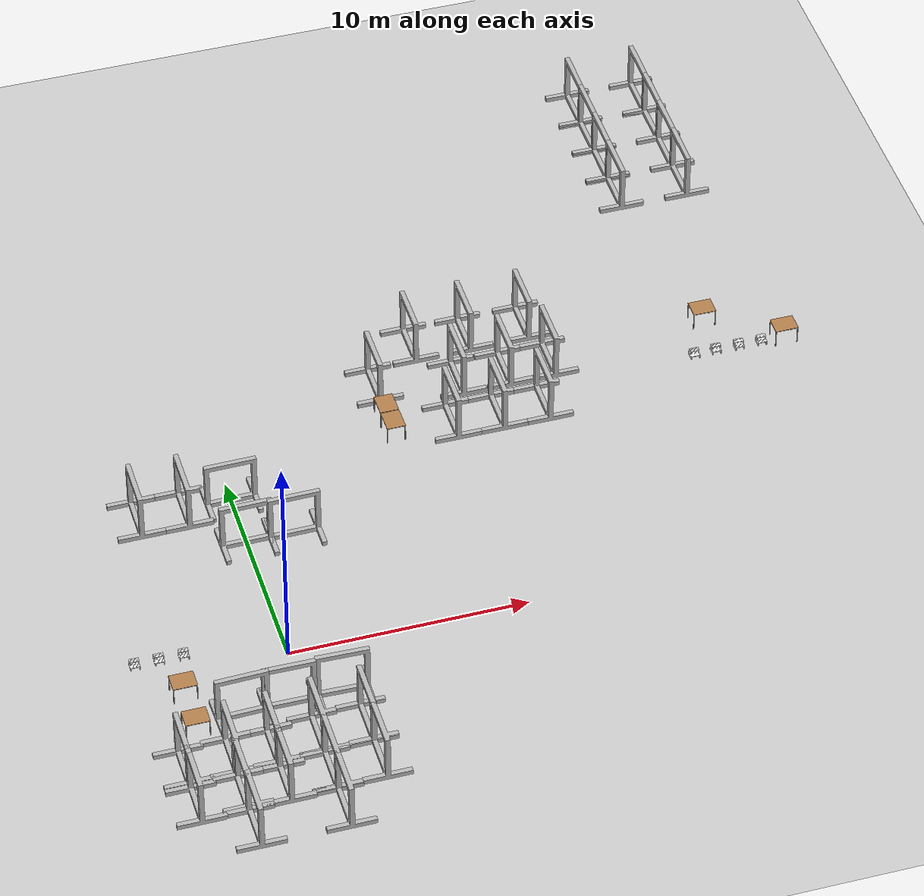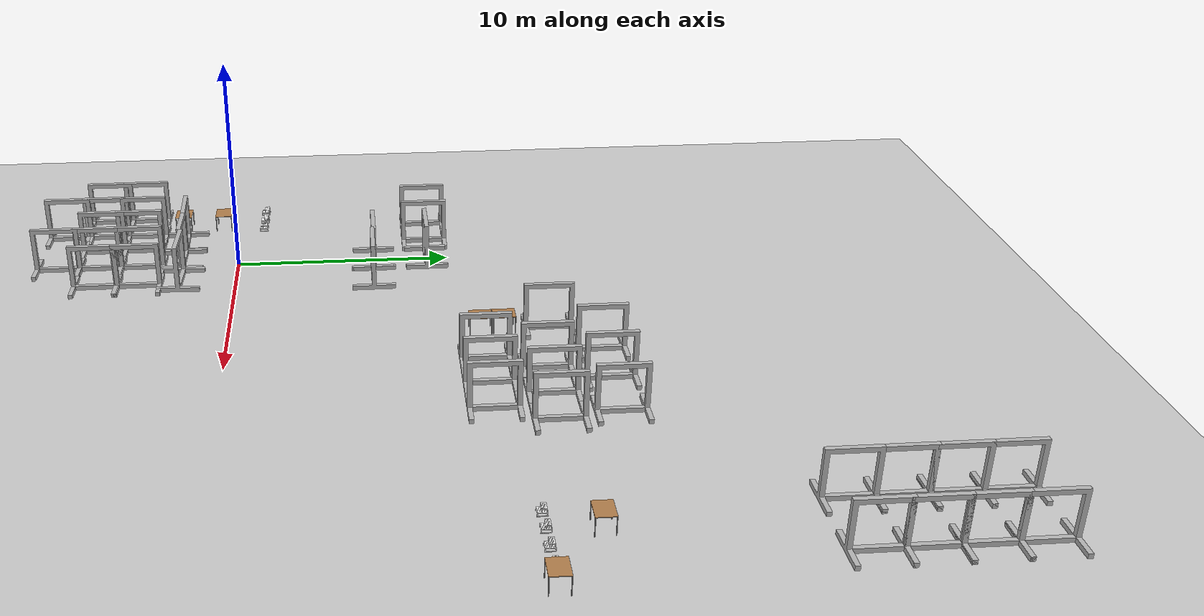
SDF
<sdf version="1.4">
 <world name="default">
  <model name="ground_plane">
   <static>1</static>
   <link name="link">
    <collision name="collision">
     <geometry><plane><normal>0 0 1</normal><size>100 100</size></plane></geometry>
     <surface><friction><ode><mu>100</mu><mu2>50</mu2></ode></friction></surface>
    </collision>
    <visual name="visual">
     <cast_shadows>0</cast_shadows>
     <geometry><plane><normal>0 0 1</normal><size>100 100</size></plane></geometry>
     <material>
      <script><uri>file://media/materials/scripts/gazebo.material</uri><name>Gazebo/Grey</name></script>
     </material>
    </visual>
    <velocity_decay><linear>0</linear><angular>0</angular></velocity_decay>
   </link>
  </model>
  <model name="clothes stand_0">
   <static>0</static>
   <link name="link">
    <collision name="colision">
     <geometry>
      <mesh><uri>model://clothes_stand/meshes/clothes_stand.stl</uri><scale>1 1 1</scale></mesh>
     </geometry>
    </collision>
    <visual name="visual">
     <geometry>
      <mesh><uri>model://clothes_stand/meshes/clothes_stand.stl</uri><scale>1 1 1</scale></mesh>
     </geometry>
    </visual>
    <velocity_decay><linear>0</linear><angular>0</angular></velocity_decay>
    <inertial>
     <inertia><ixx>1</ixx><ixy>0</ixy><ixz>0</ixz><iyy>1</iyy><iyz>0</iyz><izz>1</izz></inertia>
     <mass>1</mass>
    </inertial>
   </link>
   <pose>-5.4411 -6.71186 1e-06 -1e-06 -0 -0</pose>
  </model>
  <model name="clothes stand_1">
   <static>0</static>
   <link name="link">
    <collision name="colision">
     <geometry>
      <mesh><uri>model://clothes_stand/meshes/clothes_stand.stl</uri><scale>1 1 1</scale></mesh>
     </geometry>
    </collision>
    <visual name="visual">
     <geometry>
      <mesh><uri>model://clothes_stand/meshes/clothes_stand.stl</uri><scale>1 1 1</scale></mesh>
     </geometry>
    </visual>
    <velocity_decay><linear>0</linear><angular>0</angular></velocity_decay>
    <inertial>
     <inertia><ixx>1</ixx><ixy>0</ixy><ixz>0</ixz><iyy>1</iyy><iyz>0</iyz><izz>1</izz></inertia>
     <mass>1</mass>
    </inertial>
   </link>
   <pose>-5.45418 -4.93328 1e-06 -1e-06 -0 -0</pose>
  </model>
  <model name="clothes stand_2">
   <static>0</static>
   <link name="link">
    <collision name="colision">
     <geometry>
      <mesh><uri>model://clothes_stand/meshes/clothes_stand.stl</uri><scale>1 1 1</scale></mesh>
     </geometry>
    </collision>
    <visual name="visual">
     <geometry>
      <mesh><uri>model://clothes_stand/meshes/clothes_stand.stl</uri><scale>1 1 1</scale></mesh>
     </geometry>
    </visual>
    <velocity_decay><linear>0</linear><angular>0</angular></velocity_decay>
    <inertial>
     <inertia><ixx>1</ixx><ixy>0</ixy><ixz>0</ixz><iyy>1</iyy><iyz>0</iyz><izz>1</izz></inertia>
     <mass>1</mass>
    </inertial>
   </link>
   <pose>-3.55297 -8.5202 1e-06 -1e-06 -0 -0</pose>
  </model>
  <model name="clothes stand_4">
   <static>0</static>
   <link name="link">
    <collision name="colision">
     <geometry>
      <mesh><uri>model://clothes_stand/meshes/clothes_stand.stl</uri><scale>1 1 1</scale></mesh>
     </geometry>
    </collision>
    <visual name="visual">
     <geometry>
      <mesh><uri>model://clothes_stand/meshes/clothes_stand.stl</uri><scale>1 1 1</scale></mesh>
     </geometry>
    </visual>
    <velocity_decay><linear>0</linear><angular>0</angular></velocity_decay>
    <inertial>
     <inertia><ixx>1</ixx><ixy>0</ixy><ixz>0</ixz><iyy>1</iyy><iyz>0</iyz><izz>1</izz></inertia>
     <mass>1</mass>
    </inertial>
   </link>
   <pose>-3.58537 -6.67156 1e-06 -1e-06 -0 -0</pose>
  </model>
  <model name="clothes stand_5">
   <static>0</static>
   <link name="link">
    <collision name="colision">
     <geometry>
      <mesh><uri>model://clothes_stand/meshes/clothes_stand.stl</uri><scale>1 1 1</scale></mesh>
     </geometry>
    </collision>
    <visual name="visual">
     <geometry>
      <mesh><uri>model://clothes_stand/meshes/clothes_stand.stl</uri><scale>1 1 1</scale></mesh>
     </geometry>
    </visual>
    <velocity_decay><linear>0</linear><angular>0</angular></velocity_decay>
    <inertial>
     <inertia><ixx>1</ixx><ixy>0</ixy><ixz>0</ixz><iyy>1</iyy><iyz>0</iyz><izz>1</izz></inertia>
     <mass>1</mass>
    </inertial>
   </link>
   <pose>-1.8675 -6.6101 1e-06 -1e-06 -0 -0</pose>
  </model>
  <model name="clothes stand_6">
   <static>0</static>
   <link name="link">
    <collision name="colision">
     <geometry>
      <mesh><uri>model://clothes_stand/meshes/clothes_stand.stl</uri><scale>1 1 1</scale></mesh>
     </geometry>
    </collision>
    <visual name="visual">
     <geometry>
      <mesh><uri>model://clothes_stand/meshes/clothes_stand.stl</uri><scale>1 1 1</scale></mesh>
     </geometry>
    </visual>
    <velocity_decay><linear>0</linear><angular>0</angular></velocity_decay>
    <inertial>
     <inertia><ixx>1</ixx><ixy>0</ixy><ixz>0</ixz><iyy>1</iyy><iyz>0</iyz><izz>1</izz></inertia>
     <mass>1</mass>
    </inertial>
   </link>
   <pose>-3.54219 -4.83356 1e-06 -1e-06 -0 -0</pose>
  </model>
  <model name="clothes stand_7">
   <static>0</static>
   <link name="link">
    <collision name="colision">
     <geometry>
      <mesh><uri>model://clothes_stand/meshes/clothes_stand.stl</uri><scale>1 1 1</scale></mesh>
     </geometry>
    </collision>
    <visual name="visual">
     <geometry>
      <mesh><uri>model://clothes_stand/meshes/clothes_stand.stl</uri><scale>1 1 1</scale></mesh>
     </geometry>
    </visual>
    <velocity_decay><linear>0</linear><angular>0</angular></velocity_decay>
    <inertial>
     <inertia><ixx>1</ixx><ixy>0</ixy><ixz>0</ixz><iyy>1</iyy><iyz>0</iyz><izz>1</izz></inertia>
     <mass>1</mass>
    </inertial>
   </link>
   <pose>-1.87038 -4.82552 1e-06 -1e-06 -0 -0</pose>
  </model>
  <model name="clothes stand_8">
   <static>0</static>
   <link name="link">
    <collision name="colision">
     <geometry>
      <mesh><uri>model://clothes_stand/meshes/clothes_stand.stl</uri><scale>1 1 1</scale></mesh>
     </geometry>
    </collision>
    <visual name="visual">
     <geometry>
      <mesh><uri>model://clothes_stand/meshes/clothes_stand.stl</uri><scale>1 1 1</scale></mesh>
     </geometry>
    </visual>
    <velocity_decay><linear>0</linear><angular>0</angular></velocity_decay>
    <inertial>
     <inertia><ixx>1</ixx><ixy>0</ixy><ixz>0</ixz><iyy>1</iyy><iyz>0</iyz><izz>1</izz></inertia>
     <mass>1</mass>
    </inertial>
   </link>
   <pose>-0 -8.51579 1e-06 -1e-06 -0 -0</pose>
  </model>
  <model name="clothes stand_9">
   <static>0</static>
   <link name="link">
    <collision name="colision">
     <geometry>
      <mesh><uri>model://clothes_stand/meshes/clothes_stand.stl</uri><scale>1 1 1</scale></mesh>
     </geometry>
    </collision>
    <visual name="visual">
     <geometry>
      <mesh><uri>model://clothes_stand/meshes/clothes_stand.stl</uri><scale>1 1 1</scale></mesh>
     </geometry>
    </visual>
    <velocity_decay><linear>0</linear><angular>0</angular></velocity_decay>
    <inertial>
     <inertia><ixx>1</ixx><ixy>0</ixy><ixz>0</ixz><iyy>1</iyy><iyz>0</iyz><izz>1</izz></inertia>
     <mass>1</mass>
    </inertial>
   </link>
   <pose>-0 -6.54735 1e-06 -1e-06 -0 -0</pose>
  </model>
  <model name="clothes stand_10">
   <static>0</static>
   <link name="link">
    <collision name="colision">
     <geometry>
      <mesh><uri>model://clothes_stand/meshes/clothes_stand.stl</uri><scale>1 1 1</scale></mesh>
     </geometry>
    </collision>
    <visual name="visual">
     <geometry>
      <mesh><uri>model://clothes_stand/meshes/clothes_stand.stl</uri><scale>1 1 1</scale></mesh>
     </geometry>
    </visual>
    <velocity_decay><linear>0</linear><angular>0</angular></velocity_decay>
    <inertial>
     <inertia><ixx>1</ixx><ixy>0</ixy><ixz>0</ixz><iyy>1</iyy><iyz>0</iyz><izz>1</izz></inertia>
     <mass>1</mass>
    </inertial>
   </link>
   <pose>-0 -4.59399 1e-06 -1e-06 -0 -0</pose>
  </model>
  <model name="clothes stand_12">
   <static>0</static>
   <link name="link">
    <collision name="colision">
     <geometry>
      <mesh><uri>model://clothes_stand/meshes/clothes_stand.stl</uri><scale>1 1 1</scale></mesh>
     </geometry>
    </collision>
    <visual name="visual">
     <geometry>
      <mesh><uri>model://clothes_stand/meshes/clothes_stand.stl</uri><scale>1 1 1</scale></mesh>
     </geometry>
    </visual>
    <velocity_decay><linear>0</linear><angular>0</angular></velocity_decay>
    <inertial>
     <inertia><ixx>1</ixx><ixy>0</ixy><ixz>0</ixz><iyy>1</iyy><iyz>0</iyz><izz>1</izz></inertia>
     <mass>1</mass>
    </inertial>
   </link>
   <pose>2 -6.47453 1e-06 -1e-06 -0 -0</pose>
  </model>
  <model name="clothes stand_13">
   <static>0</static>
   <link name="link">
    <collision name="colision">
     <geometry>
      <mesh><uri>model://clothes_stand/meshes/clothes_stand.stl</uri><scale>1 1 1</scale></mesh>
     </geometry>
    </collision>
    <visual name="visual">
     <geometry>
      <mesh><uri>model://clothes_stand/meshes/clothes_stand.stl</uri><scale>1 1 1</scale></mesh>
     </geometry>
    </visual>
    <velocity_decay><linear>0</linear><angular>0</angular></velocity_decay>
    <inertial>
     <inertia><ixx>1</ixx><ixy>0</ixy><ixz>0</ixz><iyy>1</iyy><iyz>0</iyz><izz>1</izz></inertia>
     <mass>1</mass>
    </inertial>
   </link>
   <pose>2 -4.5232 1e-06 -1e-06 -0 -0</pose>
  </model>
  <model name="ikea stool">
   <static>1</static>
   <link name="link">
    <collision name="colision">
     <geometry><mesh><uri>model://ikea_stool/meshes/ikea_stool.min.dae</uri><scale>1 1 1</scale></mesh></geometry>
    </collision>
    <visual name="visual">
     <geometry><mesh><uri>model://ikea_stool/meshes/ikea_stool.dae</uri><scale>1 1 1</scale></mesh></geometry>
    </visual>
    <velocity_decay><linear>0</linear><angular>0</angular></velocity_decay>
   </link>
   <pose>-6 1 0 0 -0 0</pose>
  </model>
  <model name="ikea stool_0">
   <static>1</static>
   <link name="link">
    <collision name="colision">
     <geometry><mesh><uri>model://ikea_stool/meshes/ikea_stool.min.dae</uri><scale>1 1 1</scale></mesh></geometry>
    </collision>
    <visual name="visual">
     <geometry><mesh><uri>model://ikea_stool/meshes/ikea_stool.dae</uri><scale>1 1 1</scale></mesh></geometry>
    </visual>
    <velocity_decay><linear>0</linear><angular>0</angular></velocity_decay>
   </link>
   <pose>-5 1 0 0 -0 0</pose>
  </model>
  <model name="ikea stool_1">
   <static>1</static>
   <link name="link">
    <collision name="colision">
     <geometry><mesh><uri>model://ikea_stool/meshes/ikea_stool.min.dae</uri><scale>1 1 1</scale></mesh></geometry>
    </collision>
    <visual name="visual">
     <geometry><mesh><uri>model://ikea_stool/meshes/ikea_stool.dae</uri><scale>1 1 1</scale></mesh></geometry>
    </visual>
    <velocity_decay><linear>0</linear><angular>0</angular></velocity_decay>
   </link>
   <pose>-4 1 0 0 -0 0</pose>
  </model>
  <model name="table">
   <static>1</static>
   <link name="link">
    <collision name="surface">
     <pose>0 0 0.8 0 -0 0</pose>
     <geometry><box><size>1 0.8 0.03</size></box></geometry>
    </collision>
    <visual name="visual1">
     <pose>0 0 0.8 0 -0 0</pose>
     <geometry><box><size>1 0.8 0.03</size></box></geometry>
     <material>
      <script><uri>file://media/materials/scripts/gazebo.material</uri><name>Gazebo/Wood</name></script>
     </material>
    </visual>
    <collision name="front_left_leg">
     <pose>0.48 0.38 0.4 0 -0 0</pose>
     <geometry><cylinder><radius>0.02</radius><length>0.8</length></cylinder></geometry>
    </collision>
    <visual name="front_left_leg">
     <pose>0.48 0.38 0.4 0 -0 0</pose>
     <geometry><cylinder><radius>0.02</radius><length>0.8</length></cylinder></geometry>
     <material>
      <script><uri>file://media/materials/scripts/gazebo.material</uri><name>Gazebo/Grey</name></script>
     </material>
    </visual>
    <collision name="front_right_leg">
     <pose>0.48 -0.38 0.4 0 -0 0</pose>
     <geometry><cylinder><radius>0.02</radius><length>0.8</length></cylinder></geometry>
    </collision>
    <visual name="front_right_leg">
     <pose>0.48 -0.38 0.4 0 -0 0</pose>
     <geometry><cylinder><radius>0.02</radius><length>0.8</length></cylinder></geometry>
     <material>
      <script><uri>file://media/materials/scripts/gazebo.material</uri><name>Gazebo/Grey</name></script>
     </material>
    </visual>
    <collision name="back_right_leg">
     <pose>-0.48 -0.38 0.4 0 -0 0</pose>
     <geometry><cylinder><radius>0.02</radius><length>0.8</length></cylinder></geometry>
    </collision>
    <visual name="back_right_leg">
     <pose>-0.48 -0.38 0.4 0 -0 0</pose>
     <geometry><cylinder><radius>0.02</radius><length>0.8</length></cylinder></geometry>
     <material>
      <script><uri>file://media/materials/scripts/gazebo.material</uri><name>Gazebo/Grey</name></script>
     </material>
    </visual>
    <collision name="back_left_leg">
     <pose>-0.48 0.38 0.4 0 -0 0</pose>
     <geometry><cylinder><radius>0.02</radius><length>0.8</length></cylinder></geometry>
    </collision>
    <visual name="back_left_leg">
     <pose>-0.48 0.38 0.4 0 -0 0</pose>
     <geometry><cylinder><radius>0.02</radius><length>0.8</length></cylinder></geometry>
     <material>
      <script><uri>file://media/materials/scripts/gazebo.material</uri><name>Gazebo/Grey</name></script>
     </material>
    </visual>
    <velocity_decay><linear>0</linear><angular>0</angular></velocity_decay>
   </link>
   <pose>-4.48984 -3 0 0 -0 0</pose>
  </model>
  <model name="table_0">
   <static>1</static>
   <link name="link">
    <collision name="surface">
     <pose>0 0 0.8 0 -0 0</pose>
     <geometry><box><size>1 0.8 0.03</size></box></geometry>
    </collision>
    <visual name="visual1">
     <pose>0 0 0.8 0 -0 0</pose>
     <geometry><box><size>1 0.8 0.03</size></box></geometry>
     <material>
      <script><uri>file://media/materials/scripts/gazebo.material</uri><name>Gazebo/Wood</name></script>
     </material>
    </visual>
    <collision name="front_left_leg">
     <pose>0.48 0.38 0.4 0 -0 0</pose>
     <geometry><cylinder><radius>0.02</radius><length>0.8</length></cylinder></geometry>
    </collision>
    <visual name="front_left_leg">
     <pose>0.48 0.38 0.4 0 -0 0</pose>
     <geometry><cylinder><radius>0.02</radius><length>0.8</length></cylinder></geometry>
     <material>
      <script><uri>file://media/materials/scripts/gazebo.material</uri><name>Gazebo/Grey</name></script>
     </material>
    </visual>
    <collision name="front_right_leg">
     <pose>0.48 -0.38 0.4 0 -0 0</pose>
     <geometry><cylinder><radius>0.02</radius><length>0.8</length></cylinder></geometry>
    </collision>
    <visual name="front_right_leg">
     <pose>0.48 -0.38 0.4 0 -0 0</pose>
     <geometry><cylinder><radius>0.02</radius><length>0.8</length></cylinder></geometry>
     <material>
      <script><uri>file://media/materials/scripts/gazebo.material</uri><name>Gazebo/Grey</name></script>
     </material>
    </visual>
    <collision name="back_right_leg">
     <pose>-0.48 -0.38 0.4 0 -0 0</pose>
     <geometry><cylinder><radius>0.02</radius><length>0.8</length></cylinder></geometry>
    </collision>
    <visual name="back_right_leg">
     <pose>-0.48 -0.38 0.4 0 -0 0</pose>
     <geometry><cylinder><radius>0.02</radius><length>0.8</length></cylinder></geometry>
     <material>
      <script><uri>file://media/materials/scripts/gazebo.material</uri><name>Gazebo/Grey</name></script>
     </material>
    </visual>
    <collision name="back_left_leg">
     <pose>-0.48 0.38 0.4 0 -0 0</pose>
     <geometry><cylinder><radius>0.02</radius><length>0.8</length></cylinder></geometry>
    </collision>
    <visual name="back_left_leg">
     <pose>-0.48 0.38 0.4 0 -0 0</pose>
     <geometry><cylinder><radius>0.02</radius><length>0.8</length></cylinder></geometry>
     <material>
      <script><uri>file://media/materials/scripts/gazebo.material</uri><name>Gazebo/Grey</name></script>
     </material>
    </visual>
    <velocity_decay><linear>0</linear><angular>0</angular></velocity_decay>
   </link>
   <pose>-4.49567 -1 0 0 -0 0</pose>
  </model>
  <model name="clothes stand_14">
   <static>0</static>
   <link name="link">
    <collision name="colision">
     <geometry>
      <mesh><uri>model://clothes_stand/meshes/clothes_stand.stl</uri><scale>1 1 1</scale></mesh>
     </geometry>
    </collision>
    <visual name="visual">
     <geometry>
      <mesh><uri>model://clothes_stand/meshes/clothes_stand.stl</uri><scale>1 1 1</scale></mesh>
     </geometry>
    </visual>
    <velocity_decay><linear>0</linear><angular>0</angular></velocity_decay>
    <inertial>
     <inertia><ixx>1</ixx><ixy>0</ixy><ixz>0</ixz><iyy>1</iyy><iyz>0</iyz><izz>1</izz></inertia>
     <mass>1</mass>
    </inertial>
   </link>
   <pose>-2.53786 -2.70355 1e-06 -1e-06 -1.05879e-22 1.6</pose>
  </model>
  <model name="clothes stand_15">
   <static>0</static>
   <link name="link">
    <collision name="colision">
     <geometry>
      <mesh><uri>model://clothes_stand/meshes/clothes_stand.stl</uri><scale>1 1 1</scale></mesh>
     </geometry>
    </collision>
    <visual name="visual">
     <geometry>
      <mesh><uri>model://clothes_stand/meshes/clothes_stand.stl</uri><scale>1 1 1</scale></mesh>
     </geometry>
    </visual>
    <velocity_decay><linear>0</linear><angular>0</angular></velocity_decay>
    <inertial>
     <inertia><ixx>1</ixx><ixy>0</ixy><ixz>0</ixz><iyy>1</iyy><iyz>0</iyz><izz>1</izz></inertia>
     <mass>1</mass>
    </inertial>
   </link>
   <pose>-0.629542 -2.66706 1e-06 -1e-06 1.05879e-22 1.56</pose>
  </model>
  <model name="clothes stand_16">
   <static>0</static>
   <link name="link">
    <collision name="colision">
     <geometry>
      <mesh><uri>model://clothes_stand/meshes/clothes_stand.stl</uri><scale>1 1 1</scale></mesh>
     </geometry>
    </collision>
    <visual name="visual">
     <geometry>
      <mesh><uri>model://clothes_stand/meshes/clothes_stand.stl</uri><scale>1 1 1</scale></mesh>
     </geometry>
    </visual>
    <velocity_decay><linear>0</linear><angular>0</angular></velocity_decay>
    <inertial>
     <inertia><ixx>1</ixx><ixy>0</ixy><ixz>0</ixz><iyy>1</iyy><iyz>0</iyz><izz>1</izz></inertia>
     <mass>1</mass>
    </inertial>
   </link>
   <pose>1.54635 -2.60561 1e-06 -1e-06 1.05879e-22 -1.6</pose>
  </model>
  <model name="clothes stand_17">
   <static>0</static>
   <link name="link">
    <collision name="colision">
     <geometry>
      <mesh><uri>model://clothes_stand/meshes/clothes_stand.stl</uri><scale>1 1 1</scale></mesh>
     </geometry>
    </collision>
    <visual name="visual">
     <geometry>
      <mesh><uri>model://clothes_stand/meshes/clothes_stand.stl</uri><scale>1 1 1</scale></mesh>
     </geometry>
    </visual>
    <velocity_decay><linear>0</linear><angular>0</angular></velocity_decay>
    <inertial>
     <inertia><ixx>1</ixx><ixy>0</ixy><ixz>0</ixz><iyy>1</iyy><iyz>0</iyz><izz>1</izz></inertia>
     <mass>1</mass>
    </inertial>
   </link>
   <pose>-4 9 1e-06 -1e-06 -0 -0</pose>
  </model>
  <model name="clothes stand_18">
   <static>0</static>
   <link name="link">
    <collision name="colision">
     <geometry>
      <mesh><uri>model://clothes_stand/meshes/clothes_stand.stl</uri><scale>1 1 1</scale></mesh>
     </geometry>
    </collision>
    <visual name="visual">
     <geometry>
      <mesh><uri>model://clothes_stand/meshes/clothes_stand.stl</uri><scale>1 1 1</scale></mesh>
     </geometry>
    </visual>
    <velocity_decay><linear>0</linear><angular>0</angular></velocity_decay>
    <inertial>
     <inertia><ixx>1</ixx><ixy>0</ixy><ixz>0</ixz><iyy>1</iyy><iyz>0</iyz><izz>1</izz></inertia>
     <mass>1</mass>
    </inertial>
   </link>
   <pose>-2 9 1e-06 -1e-06 -0 -0</pose>
  </model>
  <model name="clothes stand_19">
   <static>0</static>
   <link name="link">
    <collision name="colision">
     <geometry>
      <mesh><uri>model://clothes_stand/meshes/clothes_stand.stl</uri><scale>1 1 1</scale></mesh>
     </geometry>
    </collision>
    <visual name="visual">
     <geometry>
      <mesh><uri>model://clothes_stand/meshes/clothes_stand.stl</uri><scale>1 1 1</scale></mesh>
     </geometry>
    </visual>
    <velocity_decay><linear>0</linear><angular>0</angular></velocity_decay>
    <inertial>
     <inertia><ixx>1</ixx><ixy>0</ixy><ixz>0</ixz><iyy>1</iyy><iyz>0</iyz><izz>1</izz></inertia>
     <mass>1</mass>
    </inertial>
   </link>
   <pose>-0 9 1e-06 -1e-06 -1.05879e-22 -1.56</pose>
  </model>
  <model name="clothes stand_21">
   <static>0</static>
   <link name="link">
    <collision name="colision">
     <geometry>
      <mesh><uri>model://clothes_stand/meshes/clothes_stand.stl</uri><scale>1 1 1</scale></mesh>
     </geometry>
    </collision>
    <visual name="visual">
     <geometry>
      <mesh><uri>model://clothes_stand/meshes/clothes_stand.stl</uri><scale>1 1 1</scale></mesh>
     </geometry>
    </visual>
    <velocity_decay><linear>0</linear><angular>0</angular></velocity_decay>
    <inertial>
     <inertia><ixx>1</ixx><ixy>0</ixy><ixz>0</ixz><iyy>1</iyy><iyz>0</iyz><izz>1</izz></inertia>
     <mass>1</mass>
    </inertial>
   </link>
   <pose>-0 6.48826 1e-06 -1e-06 -1.05879e-22 -1.56</pose>
  </model>
  <model name="clothes stand_22">
   <static>0</static>
   <link name="link">
    <collision name="colision">
     <geometry>
      <mesh><uri>model://clothes_stand/meshes/clothes_stand.stl</uri><scale>1 1 1</scale></mesh>
     </geometry>
    </collision>
    <visual name="visual">
     <geometry>
      <mesh><uri>model://clothes_stand/meshes/clothes_stand.stl</uri><scale>1 1 1</scale></mesh>
     </geometry>
    </visual>
    <velocity_decay><linear>0</linear><angular>0</angular></velocity_decay>
    <inertial>
     <inertia><ixx>1</ixx><ixy>0</ixy><ixz>0</ixz><iyy>1</iyy><iyz>0</iyz><izz>1</izz></inertia>
     <mass>1</mass>
    </inertial>
   </link>
   <pose>2 6.43456 1e-06 -1e-06 -1.05879e-22 -1.56</pose>
  </model>
  <model name="table_1">
   <static>1</static>
   <link name="link">
    <collision name="surface">
     <pose>0 0 0.8 0 -0 0</pose>
     <geometry><box><size>1 0.8 0.03</size></box></geometry>
    </collision>
    <visual name="visual1">
     <pose>0 0 0.8 0 -0 0</pose>
     <geometry><box><size>1 0.8 0.03</size></box></geometry>
     <material>
      <script><uri>file://media/materials/scripts/gazebo.material</uri><name>Gazebo/Wood</name></script>
     </material>
    </visual>
    <collision name="front_left_leg">
     <pose>0.48 0.38 0.4 0 -0 0</pose>
     <geometry><cylinder><radius>0.02</radius><length>0.8</length></cylinder></geometry>
    </collision>
    <visual name="front_left_leg">
     <pose>0.48 0.38 0.4 0 -0 0</pose>
     <geometry><cylinder><radius>0.02</radius><length>0.8</length></cylinder></geometry>
     <material>
      <script><uri>file://media/materials/scripts/gazebo.material</uri><name>Gazebo/Grey</name></script>
     </material>
    </visual>
    <collision name="front_right_leg">
     <pose>0.48 -0.38 0.4 0 -0 0</pose>
     <geometry><cylinder><radius>0.02</radius><length>0.8</length></cylinder></geometry>
    </collision>
    <visual name="front_right_leg">
     <pose>0.48 -0.38 0.4 0 -0 0</pose>
     <geometry><cylinder><radius>0.02</radius><length>0.8</length></cylinder></geometry>
     <material>
      <script><uri>file://media/materials/scripts/gazebo.material</uri><name>Gazebo/Grey</name></script>
     </material>
    </visual>
    <collision name="back_right_leg">
     <pose>-0.48 -0.38 0.4 0 -0 0</pose>
     <geometry><cylinder><radius>0.02</radius><length>0.8</length></cylinder></geometry>
    </collision>
    <visual name="back_right_leg">
     <pose>-0.48 -0.38 0.4 0 -0 0</pose>
     <geometry><cylinder><radius>0.02</radius><length>0.8</length></cylinder></geometry>
     <material>
      <script><uri>file://media/materials/scripts/gazebo.material</uri><name>Gazebo/Grey</name></script>
     </material>
    </visual>
    <collision name="back_left_leg">
     <pose>-0.48 0.38 0.4 0 -0 0</pose>
     <geometry><cylinder><radius>0.02</radius><length>0.8</length></cylinder></geometry>
    </collision>
    <visual name="back_left_leg">
     <pose>-0.48 0.38 0.4 0 -0 0</pose>
     <geometry><cylinder><radius>0.02</radius><length>0.8</length></cylinder></geometry>
     <material>
      <script><uri>file://media/materials/scripts/gazebo.material</uri><name>Gazebo/Grey</name></script>
     </material>
    </visual>
    <velocity_decay><linear>0</linear><angular>0</angular></velocity_decay>
   </link>
   <pose>7.468 11 0 0 0 -1.56</pose>
  </model>
  <model name="table_2">
   <static>1</static>
   <link name="link">
    <collision name="surface">
     <pose>0 0 0.8 0 -0 0</pose>
     <geometry><box><size>1 0.8 0.03</size></box></geometry>
    </collision>
    <visual name="visual1">
     <pose>0 0 0.8 0 -0 0</pose>
     <geometry><box><size>1 0.8 0.03</size></box></geometry>
     <material>
      <script><uri>file://media/materials/scripts/gazebo.material</uri><name>Gazebo/Wood</name></script>
     </material>
    </visual>
    <collision name="front_left_leg">
     <pose>0.48 0.38 0.4 0 -0 0</pose>
     <geometry><cylinder><radius>0.02</radius><length>0.8</length></cylinder></geometry>
    </collision>
    <visual name="front_left_leg">
     <pose>0.48 0.38 0.4 0 -0 0</pose>
     <geometry><cylinder><radius>0.02</radius><length>0.8</length></cylinder></geometry>
     <material>
      <script><uri>file://media/materials/scripts/gazebo.material</uri><name>Gazebo/Grey</name></script>
     </material>
    </visual>
    <collision name="front_right_leg">
     <pose>0.48 -0.38 0.4 0 -0 0</pose>
     <geometry><cylinder><radius>0.02</radius><length>0.8</length></cylinder></geometry>
    </collision>
    <visual name="front_right_leg">
     <pose>0.48 -0.38 0.4 0 -0 0</pose>
     <geometry><cylinder><radius>0.02</radius><length>0.8</length></cylinder></geometry>
     <material>
      <script><uri>file://media/materials/scripts/gazebo.material</uri><name>Gazebo/Grey</name></script>
     </material>
    </visual>
    <collision name="back_right_leg">
     <pose>-0.48 -0.38 0.4 0 -0 0</pose>
     <geometry><cylinder><radius>0.02</radius><length>0.8</length></cylinder></geometry>
    </collision>
    <visual name="back_right_leg">
     <pose>-0.48 -0.38 0.4 0 -0 0</pose>
     <geometry><cylinder><radius>0.02</radius><length>0.8</length></cylinder></geometry>
     <material>
      <script><uri>file://media/materials/scripts/gazebo.material</uri><name>Gazebo/Grey</name></script>
     </material>
    </visual>
    <collision name="back_left_leg">
     <pose>-0.48 0.38 0.4 0 -0 0</pose>
     <geometry><cylinder><radius>0.02</radius><length>0.8</length></cylinder></geometry>
    </collision>
    <visual name="back_left_leg">
     <pose>-0.48 0.38 0.4 0 -0 0</pose>
     <geometry><cylinder><radius>0.02</radius><length>0.8</length></cylinder></geometry>
     <material>
      <script><uri>file://media/materials/scripts/gazebo.material</uri><name>Gazebo/Grey</name></script>
     </material>
    </visual>
    <velocity_decay><linear>0</linear><angular>0</angular></velocity_decay>
   </link>
   <pose>7.45911 12.0317 0 0 0 -1.56</pose>
  </model>
  <model name="clothes stand_23">
   <static>0</static>
   <link name="link">
    <collision name="colision">
     <geometry>
      <mesh><uri>model://clothes_stand/meshes/clothes_stand.stl</uri><scale>1 1 1</scale></mesh>
     </geometry>
    </collision>
    <visual name="visual">
     <geometry>
      <mesh><uri>model://clothes_stand/meshes/clothes_stand.stl</uri><scale>1 1 1</scale></mesh>
     </geometry>
    </visual>
    <velocity_decay><linear>0</linear><angular>0</angular></velocity_decay>
    <inertial>
     <inertia><ixx>1</ixx><ixy>0</ixy><ixz>0</ixz><iyy>1</iyy><iyz>0</iyz><izz>1</izz></inertia>
     <mass>1</mass>
    </inertial>
   </link>
   <pose>7.47331 14 1e-06 -1e-06 -0 -0</pose>
  </model>
  <model name="clothes stand_24">
   <static>0</static>
   <link name="link">
    <collision name="colision">
     <geometry>
      <mesh><uri>model://clothes_stand/meshes/clothes_stand.stl</uri><scale>1 1 1</scale></mesh>
     </geometry>
    </collision>
    <visual name="visual">
     <geometry>
      <mesh><uri>model://clothes_stand/meshes/clothes_stand.stl</uri><scale>1 1 1</scale></mesh>
     </geometry>
    </visual>
    <velocity_decay><linear>0</linear><angular>0</angular></velocity_decay>
    <inertial>
     <inertia><ixx>1</ixx><ixy>0</ixy><ixz>0</ixz><iyy>1</iyy><iyz>0</iyz><izz>1</izz></inertia>
     <mass>1</mass>
    </inertial>
   </link>
   <pose>10 11 1e-06 -1e-06 -0 -0</pose>
  </model>
  <model name="clothes stand_25">
   <static>0</static>
   <link name="link">
    <collision name="colision">
     <geometry>
      <mesh><uri>model://clothes_stand/meshes/clothes_stand.stl</uri><scale>1 1 1</scale></mesh>
     </geometry>
    </collision>
    <visual name="visual">
     <geometry>
      <mesh><uri>model://clothes_stand/meshes/clothes_stand.stl</uri><scale>1 1 1</scale></mesh>
     </geometry>
    </visual>
    <velocity_decay><linear>0</linear><angular>0</angular></velocity_decay>
    <inertial>
     <inertia><ixx>1</ixx><ixy>0</ixy><ixz>0</ixz><iyy>1</iyy><iyz>0</iyz><izz>1</izz></inertia>
     <mass>1</mass>
    </inertial>
   </link>
   <pose>12 11 1e-06 -1e-06 -0 -0</pose>
  </model>
  <model name="clothes stand_26">
   <static>0</static>
   <link name="link">
    <collision name="colision">
     <geometry>
      <mesh><uri>model://clothes_stand/meshes/clothes_stand.stl</uri><scale>1 1 1</scale></mesh>
     </geometry>
    </collision>
    <visual name="visual">
     <geometry>
      <mesh><uri>model://clothes_stand/meshes/clothes_stand.stl</uri><scale>1 1 1</scale></mesh>
     </geometry>
    </visual>
    <velocity_decay><linear>0</linear><angular>0</angular></velocity_decay>
    <inertial>
     <inertia><ixx>1</ixx><ixy>0</ixy><ixz>0</ixz><iyy>1</iyy><iyz>0</iyz><izz>1</izz></inertia>
     <mass>1</mass>
    </inertial>
   </link>
   <pose>14 11 1e-06 -1e-06 -0 -0</pose>
  </model>
  <model name="clothes stand_27">
   <static>0</static>
   <link name="link">
    <collision name="colision">
     <geometry>
      <mesh><uri>model://clothes_stand/meshes/clothes_stand.stl</uri><scale>1 1 1</scale></mesh>
     </geometry>
    </collision>
    <visual name="visual">
     <geometry>
      <mesh><uri>model://clothes_stand/meshes/clothes_stand.stl</uri><scale>1 1 1</scale></mesh>
     </geometry>
    </visual>
    <velocity_decay><linear>0</linear><angular>0</angular></velocity_decay>
    <inertial>
     <inertia><ixx>1</ixx><ixy>0</ixy><ixz>0</ixz><iyy>1</iyy><iyz>0</iyz><izz>1</izz></inertia>
     <mass>1</mass>
    </inertial>
   </link>
   <pose>10.9614 13.4712 1e-06 -1e-06 -0 -0</pose>
  </model>
  <model name="clothes stand_28">
   <static>0</static>
   <link name="link">
    <collision name="colision">
     <geometry>
      <mesh><uri>model://clothes_stand/meshes/clothes_stand.stl</uri><scale>1 1 1</scale></mesh>
     </geometry>
    </collision>
    <visual name="visual">
     <geometry>
      <mesh><uri>model://clothes_stand/meshes/clothes_stand.stl</uri><scale>1 1 1</scale></mesh>
     </geometry>
    </visual>
    <velocity_decay><linear>0</linear><angular>0</angular></velocity_decay>
    <inertial>
     <inertia><ixx>1</ixx><ixy>0</ixy><ixz>0</ixz><iyy>1</iyy><iyz>0</iyz><izz>1</izz></inertia>
     <mass>1</mass>
    </inertial>
   </link>
   <pose>13.0202 13.4776 1e-06 -1e-06 -0 -0</pose>
  </model>
  <model name="clothes stand_29">
   <static>0</static>
   <link name="link">
    <collision name="colision">
     <geometry>
      <mesh><uri>model://clothes_stand/meshes/clothes_stand.stl</uri><scale>1 1 1</scale></mesh>
     </geometry>
    </collision>
    <visual name="visual">
     <geometry>
      <mesh><uri>model://clothes_stand/meshes/clothes_stand.stl</uri><scale>1 1 1</scale></mesh>
     </geometry>
    </visual>
    <velocity_decay><linear>0</linear><angular>0</angular></velocity_decay>
    <inertial>
     <inertia><ixx>1</ixx><ixy>0</ixy><ixz>0</ixz><iyy>1</iyy><iyz>0</iyz><izz>1</izz></inertia>
     <mass>1</mass>
    </inertial>
   </link>
   <pose>15.001 13.481 1e-06 -1e-06 -0 -0</pose>
  </model>
  <model name="clothes stand_30">
   <static>0</static>
   <link name="link">
    <collision name="colision">
     <geometry>
      <mesh><uri>model://clothes_stand/meshes/clothes_stand.stl</uri><scale>1 1 1</scale></mesh>
     </geometry>
    </collision>
    <visual name="visual">
     <geometry>
      <mesh><uri>model://clothes_stand/meshes/clothes_stand.stl</uri><scale>1 1 1</scale></mesh>
     </geometry>
    </visual>
    <velocity_decay><linear>0</linear><angular>0</angular></velocity_decay>
    <inertial>
     <inertia><ixx>1</ixx><ixy>0</ixy><ixz>0</ixz><iyy>1</iyy><iyz>0</iyz><izz>1</izz></inertia>
     <mass>1</mass>
    </inertial>
   </link>
   <pose>9.59487 16 1e-06 -1e-06 -0 -0</pose>
  </model>
  <model name="clothes stand_31">
   <static>0</static>
   <link name="link">
    <collision name="colision">
     <geometry>
      <mesh><uri>model://clothes_stand/meshes/clothes_stand.stl</uri><scale>1 1 1</scale></mesh>
     </geometry>
    </collision>
    <visual name="visual">
     <geometry>
      <mesh><uri>model://clothes_stand/meshes/clothes_stand.stl</uri><scale>1 1 1</scale></mesh>
     </geometry>
    </visual>
    <velocity_decay><linear>0</linear><angular>0</angular></velocity_decay>
    <inertial>
     <inertia><ixx>1</ixx><ixy>0</ixy><ixz>0</ixz><iyy>1</iyy><iyz>0</iyz><izz>1</izz></inertia>
     <mass>1</mass>
    </inertial>
   </link>
   <pose>12 16 1e-06 -1e-06 -0 -0</pose>
  </model>
  <model name="clothes stand_32">
   <static>0</static>
   <link name="link">
    <collision name="colision">
     <geometry>
      <mesh><uri>model://clothes_stand/meshes/clothes_stand.stl</uri><scale>1 1 1</scale></mesh>
     </geometry>
    </collision>
    <visual name="visual">
     <geometry>
      <mesh><uri>model://clothes_stand/meshes/clothes_stand.stl</uri><scale>1 1 1</scale></mesh>
     </geometry>
    </visual>
    <velocity_decay><linear>0</linear><angular>0</angular></velocity_decay>
    <inertial>
     <inertia><ixx>1</ixx><ixy>0</ixy><ixz>0</ixz><iyy>1</iyy><iyz>0</iyz><izz>1</izz></inertia>
     <mass>1</mass>
    </inertial>
   </link>
   <pose>14.5794 16 1e-06 -1e-06 -0 -0</pose>
  </model>
  <model name="ikea stool_2">
   <static>1</static>
   <link name="link">
    <collision name="colision">
     <geometry><mesh><uri>model://ikea_stool/meshes/ikea_stool.min.dae</uri><scale>1 1 1</scale></mesh></geometry>
    </collision>
    <visual name="visual">
     <geometry><mesh><uri>model://ikea_stool/meshes/ikea_stool.dae</uri><scale>1 1 1</scale></mesh></geometry>
    </visual>
    <velocity_decay><linear>0</linear><angular>0</angular></velocity_decay>
   </link>
   <pose>21.0077 11.9825 0 0 -0 0</pose>
  </model>
  <model name="ikea stool_3">
   <static>1</static>
   <link name="link">
    <collision name="colision">
     <geometry><mesh><uri>model://ikea_stool/meshes/ikea_stool.min.dae</uri><scale>1 1 1</scale></mesh></geometry>
    </collision>
    <visual name="visual">
     <geometry><mesh><uri>model://ikea_stool/meshes/ikea_stool.dae</uri><scale>1 1 1</scale></mesh></geometry>
    </visual>
    <velocity_decay><linear>0</linear><angular>0</angular></velocity_decay>
   </link>
   <pose>24 12 0 0 -0 0</pose>
  </model>
  <model name="ikea stool_4">
   <static>1</static>
   <link name="link">
    <collision name="colision">
     <geometry><mesh><uri>model://ikea_stool/meshes/ikea_stool.min.dae</uri><scale>1 1 1</scale></mesh></geometry>
    </collision>
    <visual name="visual">
     <geometry><mesh><uri>model://ikea_stool/meshes/ikea_stool.dae</uri><scale>1 1 1</scale></mesh></geometry>
    </visual>
    <velocity_decay><linear>0</linear><angular>0</angular></velocity_decay>
   </link>
   <pose>23 12 0 0 -0 0</pose>
  </model>
  <model name="ikea stool_5">
   <static>1</static>
   <link name="link">
    <collision name="colision">
     <geometry><mesh><uri>model://ikea_stool/meshes/ikea_stool.min.dae</uri><scale>1 1 1</scale></mesh></geometry>
    </collision>
    <visual name="visual">
     <geometry><mesh><uri>model://ikea_stool/meshes/ikea_stool.dae</uri><scale>1 1 1</scale></mesh></geometry>
    </visual>
    <velocity_decay><linear>0</linear><angular>0</angular></velocity_decay>
   </link>
   <pose>21.9705 12 0 0 -0 0</pose>
  </model>
  <model name="table_3">
   <static>1</static>
   <link name="link">
    <collision name="surface">
     <pose>0 0 0.8 0 -0 0</pose>
     <geometry><box><size>1 0.8 0.03</size></box></geometry>
    </collision>
    <visual name="visual1">
     <pose>0 0 0.8 0 -0 0</pose>
     <geometry><box><size>1 0.8 0.03</size></box></geometry>
     <material>
      <script><uri>file://media/materials/scripts/gazebo.material</uri><name>Gazebo/Wood</name></script>
     </material>
    </visual>
    <collision name="front_left_leg">
     <pose>0.48 0.38 0.4 0 -0 0</pose>
     <geometry><cylinder><radius>0.02</radius><length>0.8</length></cylinder></geometry>
    </collision>
    <visual name="front_left_leg">
     <pose>0.48 0.38 0.4 0 -0 0</pose>
     <geometry><cylinder><radius>0.02</radius><length>0.8</length></cylinder></geometry>
     <material>
      <script><uri>file://media/materials/scripts/gazebo.material</uri><name>Gazebo/Grey</name></script>
     </material>
    </visual>
    <collision name="front_right_leg">
     <pose>0.48 -0.38 0.4 0 -0 0</pose>
     <geometry><cylinder><radius>0.02</radius><length>0.8</length></cylinder></geometry>
    </collision>
    <visual name="front_right_leg">
     <pose>0.48 -0.38 0.4 0 -0 0</pose>
     <geometry><cylinder><radius>0.02</radius><length>0.8</length></cylinder></geometry>
     <material>
      <script><uri>file://media/materials/scripts/gazebo.material</uri><name>Gazebo/Grey</name></script>
     </material>
    </visual>
    <collision name="back_right_leg">
     <pose>-0.48 -0.38 0.4 0 -0 0</pose>
     <geometry><cylinder><radius>0.02</radius><length>0.8</length></cylinder></geometry>
    </collision>
    <visual name="back_right_leg">
     <pose>-0.48 -0.38 0.4 0 -0 0</pose>
     <geometry><cylinder><radius>0.02</radius><length>0.8</length></cylinder></geometry>
     <material>
      <script><uri>file://media/materials/scripts/gazebo.material</uri><name>Gazebo/Grey</name></script>
     </material>
    </visual>
    <collision name="back_left_leg">
     <pose>-0.48 0.38 0.4 0 -0 0</pose>
     <geometry><cylinder><radius>0.02</radius><length>0.8</length></cylinder></geometry>
    </collision>
    <visual name="back_left_leg">
     <pose>-0.48 0.38 0.4 0 -0 0</pose>
     <geometry><cylinder><radius>0.02</radius><length>0.8</length></cylinder></geometry>
     <material>
      <script><uri>file://media/materials/scripts/gazebo.material</uri><name>Gazebo/Grey</name></script>
     </material>
    </visual>
    <velocity_decay><linear>0</linear><angular>0</angular></velocity_decay>
   </link>
   <pose>25 12 0 0 -0 0</pose>
  </model>
  <model name="table_4">
   <static>1</static>
   <link name="link">
    <collision name="surface">
     <pose>0 0 0.8 0 -0 0</pose>
     <geometry><box><size>1 0.8 0.03</size></box></geometry>
    </collision>
    <visual name="visual1">
     <pose>0 0 0.8 0 -0 0</pose>
     <geometry><box><size>1 0.8 0.03</size></box></geometry>
     <material>
      <script><uri>file://media/materials/scripts/gazebo.material</uri><name>Gazebo/Wood</name></script>
     </material>
    </visual>
    <collision name="front_left_leg">
     <pose>0.48 0.38 0.4 0 -0 0</pose>
     <geometry><cylinder><radius>0.02</radius><length>0.8</length></cylinder></geometry>
    </collision>
    <visual name="front_left_leg">
     <pose>0.48 0.38 0.4 0 -0 0</pose>
     <geometry><cylinder><radius>0.02</radius><length>0.8</length></cylinder></geometry>
     <material>
      <script><uri>file://media/materials/scripts/gazebo.material</uri><name>Gazebo/Grey</name></script>
     </material>
    </visual>
    <collision name="front_right_leg">
     <pose>0.48 -0.38 0.4 0 -0 0</pose>
     <geometry><cylinder><radius>0.02</radius><length>0.8</length></cylinder></geometry>
    </collision>
    <visual name="front_right_leg">
     <pose>0.48 -0.38 0.4 0 -0 0</pose>
     <geometry><cylinder><radius>0.02</radius><length>0.8</length></cylinder></geometry>
     <material>
      <script><uri>file://media/materials/scripts/gazebo.material</uri><name>Gazebo/Grey</name></script>
     </material>
    </visual>
    <collision name="back_right_leg">
     <pose>-0.48 -0.38 0.4 0 -0 0</pose>
     <geometry><cylinder><radius>0.02</radius><length>0.8</length></cylinder></geometry>
    </collision>
    <visual name="back_right_leg">
     <pose>-0.48 -0.38 0.4 0 -0 0</pose>
     <geometry><cylinder><radius>0.02</radius><length>0.8</length></cylinder></geometry>
     <material>
      <script><uri>file://media/materials/scripts/gazebo.material</uri><name>Gazebo/Grey</name></script>
     </material>
    </visual>
    <collision name="back_left_leg">
     <pose>-0.48 0.38 0.4 0 -0 0</pose>
     <geometry><cylinder><radius>0.02</radius><length>0.8</length></cylinder></geometry>
    </collision>
    <visual name="back_left_leg">
     <pose>-0.48 0.38 0.4 0 -0 0</pose>
     <geometry><cylinder><radius>0.02</radius><length>0.8</length></cylinder></geometry>
     <material>
      <script><uri>file://media/materials/scripts/gazebo.material</uri><name>Gazebo/Grey</name></script>
     </material>
    </visual>
    <velocity_decay><linear>0</linear><angular>0</angular></velocity_decay>
   </link>
   <pose>22 14 0 0 -0 0</pose>
  </model>
  <model name="clothes stand_33">
   <static>0</static>
   <link name="link">
    <collision name="colision">
     <geometry>
      <mesh><uri>model://clothes_stand/meshes/clothes_stand.stl</uri><scale>1 1 1</scale></mesh>
     </geometry>
    </collision>
    <visual name="visual">
     <geometry>
      <mesh><uri>model://clothes_stand/meshes/clothes_stand.stl</uri><scale>1 1 1</scale></mesh>
     </geometry>
    </visual>
    <velocity_decay><linear>0</linear><angular>0</angular></velocity_decay>
    <inertial>
     <inertia><ixx>1</ixx><ixy>0</ixy><ixz>0</ixz><iyy>1</iyy><iyz>0</iyz><izz>1</izz></inertia>
     <mass>1</mass>
    </inertial>
   </link>
   <pose>21 29 -2e-06 4e-06 -0 0</pose>
  </model>
  <model name="clothes stand_34">
   <static>0</static>
   <link name="link">
    <collision name="colision">
     <geometry>
      <mesh><uri>model://clothes_stand/meshes/clothes_stand.stl</uri><scale>1 1 1</scale></mesh>
     </geometry>
    </collision>
    <visual name="visual">
     <geometry>
      <mesh><uri>model://clothes_stand/meshes/clothes_stand.stl</uri><scale>1 1 1</scale></mesh>
     </geometry>
    </visual>
    <velocity_decay><linear>0</linear><angular>0</angular></velocity_decay>
    <inertial>
     <inertia><ixx>1</ixx><ixy>0</ixy><ixz>0</ixz><iyy>1</iyy><iyz>0</iyz><izz>1</izz></inertia>
     <mass>1</mass>
    </inertial>
   </link>
   <pose>24 29 -2e-06 4e-06 -0 0</pose>
  </model>
  <model name="clothes stand_35">
   <static>0</static>
   <link name="link">
    <collision name="colision">
     <geometry>
      <mesh><uri>model://clothes_stand/meshes/clothes_stand.stl</uri><scale>1 1 1</scale></mesh>
     </geometry>
    </collision>
    <visual name="visual">
     <geometry>
      <mesh><uri>model://clothes_stand/meshes/clothes_stand.stl</uri><scale>1 1 1</scale></mesh>
     </geometry>
    </visual>
    <velocity_decay><linear>0</linear><angular>0</angular></velocity_decay>
    <inertial>
     <inertia><ixx>1</ixx><ixy>0</ixy><ixz>0</ixz><iyy>1</iyy><iyz>0</iyz><izz>1</izz></inertia>
     <mass>1</mass>
    </inertial>
   </link>
   <pose>21 27 -2e-06 4e-06 -0 0</pose>
  </model>
  <model name="clothes stand_36">
   <static>0</static>
   <link name="link">
    <collision name="colision">
     <geometry>
      <mesh><uri>model://clothes_stand/meshes/clothes_stand.stl</uri><scale>1 1 1</scale></mesh>
     </geometry>
    </collision>
    <visual name="visual">
     <geometry>
      <mesh><uri>model://clothes_stand/meshes/clothes_stand.stl</uri><scale>1 1 1</scale></mesh>
     </geometry>
    </visual>
    <velocity_decay><linear>0</linear><angular>0</angular></velocity_decay>
    <inertial>
     <inertia><ixx>1</ixx><ixy>0</ixy><ixz>0</ixz><iyy>1</iyy><iyz>0</iyz><izz>1</izz></inertia>
     <mass>1</mass>
    </inertial>
   </link>
   <pose>24 27 -2e-06 4e-06 -0 0</pose>
  </model>
  <model name="clothes stand_37">
   <static>0</static>
   <link name="link">
    <collision name="colision">
     <geometry>
      <mesh><uri>model://clothes_stand/meshes/clothes_stand.stl</uri><scale>1 1 1</scale></mesh>
     </geometry>
    </collision>
    <visual name="visual">
     <geometry>
      <mesh><uri>model://clothes_stand/meshes/clothes_stand.stl</uri><scale>1 1 1</scale></mesh>
     </geometry>
    </visual>
    <velocity_decay><linear>0</linear><angular>0</angular></velocity_decay>
    <inertial>
     <inertia><ixx>1</ixx><ixy>0</ixy><ixz>0</ixz><iyy>1</iyy><iyz>0</iyz><izz>1</izz></inertia>
     <mass>1</mass>
    </inertial>
   </link>
   <pose>21 25 -2e-06 4e-06 -0 0</pose>
  </model>
  <model name="clothes stand_38">
   <static>0</static>
   <link name="link">
    <collision name="colision">
     <geometry>
      <mesh><uri>model://clothes_stand/meshes/clothes_stand.stl</uri><scale>1 1 1</scale></mesh>
     </geometry>
    </collision>
    <visual name="visual">
     <geometry>
      <mesh><uri>model://clothes_stand/meshes/clothes_stand.stl</uri><scale>1 1 1</scale></mesh>
     </geometry>
    </visual>
    <velocity_decay><linear>0</linear><angular>0</angular></velocity_decay>
    <inertial>
     <inertia><ixx>1</ixx><ixy>0</ixy><ixz>0</ixz><iyy>1</iyy><iyz>0</iyz><izz>1</izz></inertia>
     <mass>1</mass>
    </inertial>
   </link>
   <pose>24 25 -2e-06 4e-06 -0 0</pose>
  </model>
  <model name="clothes stand_39">
   <static>0</static>
   <link name="link">
    <collision name="colision">
     <geometry>
      <mesh><uri>model://clothes_stand/meshes/clothes_stand.stl</uri><scale>1 1 1</scale></mesh>
     </geometry>
    </collision>
    <visual name="visual">
     <geometry>
      <mesh><uri>model://clothes_stand/meshes/clothes_stand.stl</uri><scale>1 1 1</scale></mesh>
     </geometry>
    </visual>
    <velocity_decay><linear>0</linear><angular>0</angular></velocity_decay>
    <inertial>
     <inertia><ixx>1</ixx><ixy>0</ixy><ixz>0</ixz><iyy>1</iyy><iyz>0</iyz><izz>1</izz></inertia>
     <mass>1</mass>
    </inertial>
   </link>
   <pose>21 23 -2e-06 4e-06 -0 0</pose>
  </model>
  <model name="clothes stand_40">
   <static>0</static>
   <link name="link">
    <collision name="colision">
     <geometry>
      <mesh><uri>model://clothes_stand/meshes/clothes_stand.stl</uri><scale>1 1 1</scale></mesh>
     </geometry>
    </collision>
    <visual name="visual">
     <geometry>
      <mesh><uri>model://clothes_stand/meshes/clothes_stand.stl</uri><scale>1 1 1</scale></mesh>
     </geometry>
    </visual>
    <velocity_decay><linear>0</linear><angular>0</angular></velocity_decay>
    <inertial>
     <inertia><ixx>1</ixx><ixy>0</ixy><ixz>0</ixz><iyy>1</iyy><iyz>0</iyz><izz>1</izz></inertia>
     <mass>1</mass>
    </inertial>
   </link>
   <pose>24 23 -2e-06 4e-06 -0 0</pose>
  </model>
 </world>
</sdf>
